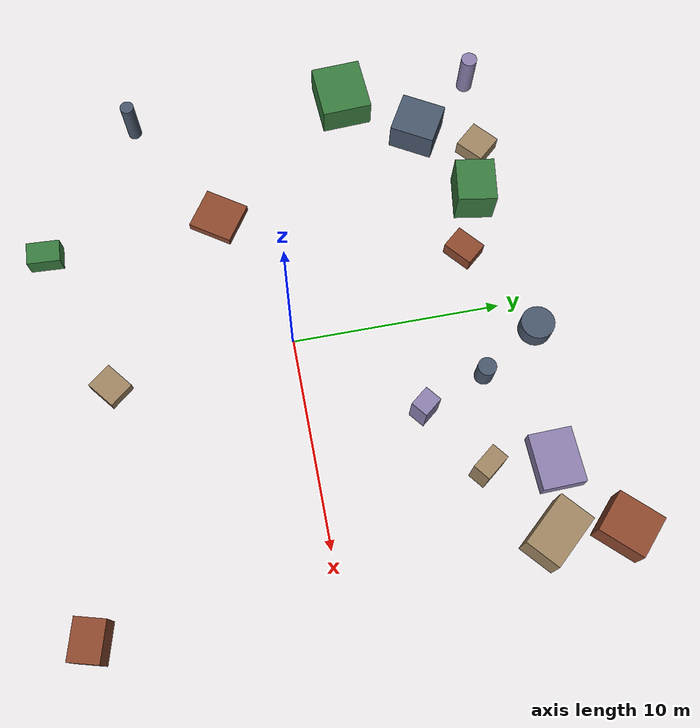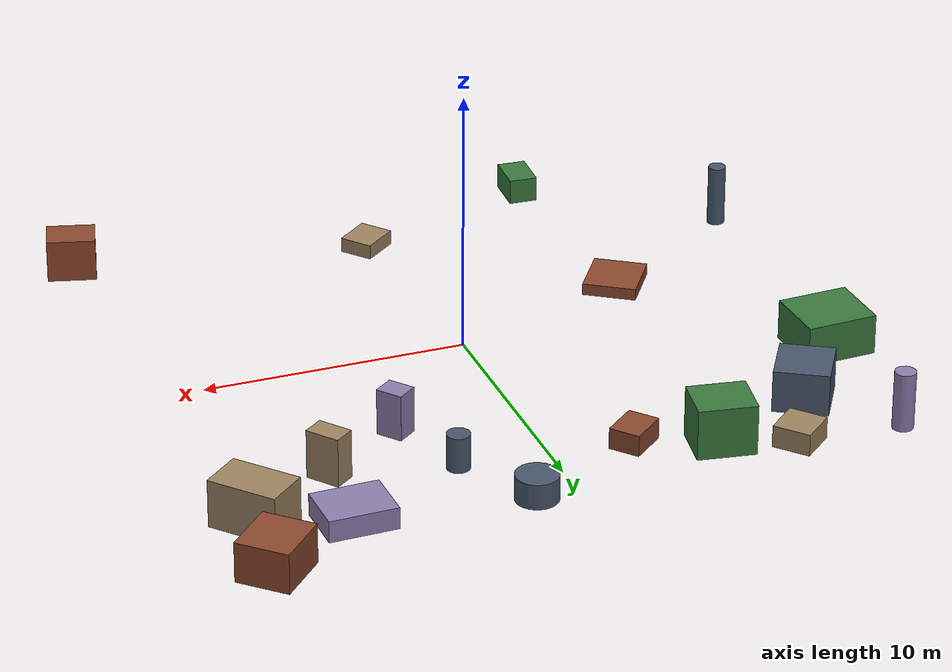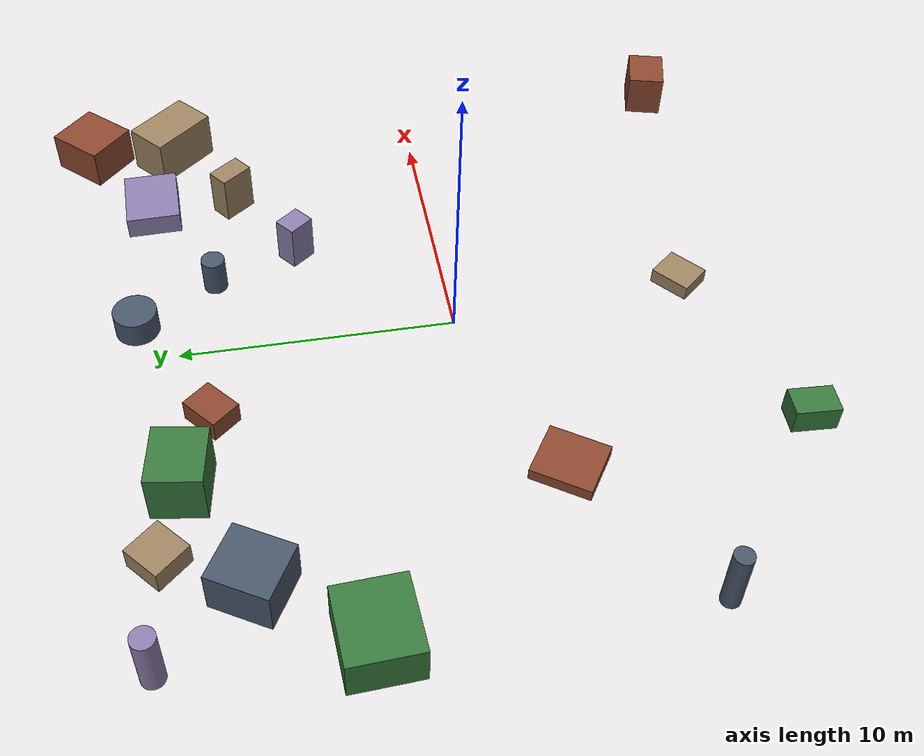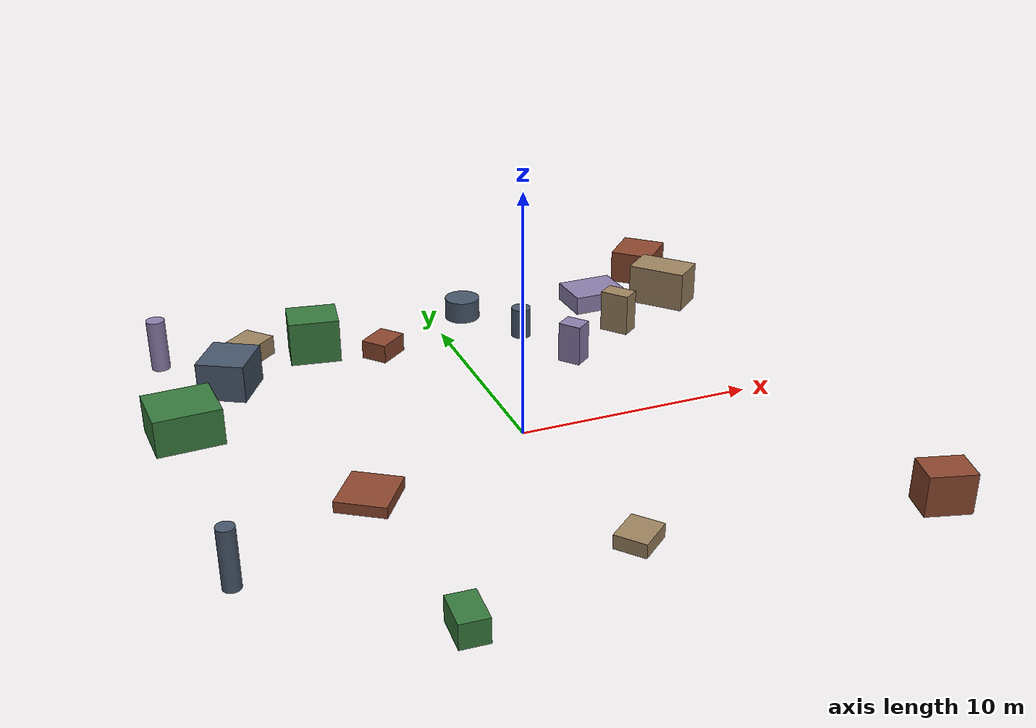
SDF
<sdf version="1.10">
 <world name="robotx_task1_uav_view">
  <gravity>0 0 -9.81</gravity>
  <physics name="physics" type="ode">
   <max_step_size>0.002</max_step_size>
   <real_time_factor>1.0</real_time_factor>
  </physics>
  <scene>
   <ambient>0.20 0.19 0.17 1.0</ambient>
   <background>0.45 0.48 0.42 1.0</background>
   <shadows>true</shadows>
   <grid>false</grid>
  </scene>
  <light name="sun" type="directional">
   <pose>0 0 300 0 0 0</pose>
   <diffuse>0.60 0.58 0.52 1.0</diffuse>
   <specular>0.30 0.35 0.28 1.0</specular>
   <direction>0.22 -0.10 -1.0</direction>
   <attenuation>
    <range>2500</range>
    <constant>0.85</constant>
    <linear>0.001</linear>
    <quadratic>0.00005</quadratic>
   </attenuation>
  </light>
  <plugin filename="gz-sim-physics-system" name="gz::sim::systems::Physics"/>
  <plugin filename="gz-sim-user-commands-system" name="gz::sim::systems::UserCommands"/>
  <plugin filename="gz-sim-scene-broadcaster-system" name="gz::sim::systems::SceneBroadcaster"/>
  <plugin filename="gz-sim-sensors-system" name="gz::sim::systems::Sensors">
   <render_engine>ogre2</render_engine>
  </plugin>
  <model name="scene_clutter_box_000">
   <static>true</static>
   <pose>7.737 7.488 0.952 0 0 -2.485155</pose>
   <link name="link">
    <visual name="v">
     <geometry><box><size>0.853 1.324 1.865</size></box></geometry>
     <material><ambient>0.45 0.38 0.32 1.0</ambient><diffuse>0.62 0.52 0.38 1.0</diffuse></material>
    </visual>
   </link>
  </model>
  <model name="scene_clutter_cyl_001">
   <static>true</static>
   <pose>-12.702 -6.065 1.236 0 0 1.398111</pose>
   <link name="link">
    <visual name="v">
     <geometry><cylinder><radius>0.333</radius><length>2.372</length></cylinder></geometry>
     <material><ambient>0.18 0.22 0.28 1.0</ambient><diffuse>0.28 0.34 0.42 1.0</diffuse></material>
    </visual>
   </link>
  </model>
  <model name="scene_clutter_box_002">
   <static>true</static>
   <pose>11.417 12.884 0.782 0 0 -0.757914</pose>
   <link name="link">
    <visual name="v">
     <geometry><box><size>2.028 2.218 1.525</size></box></geometry>
     <material><ambient>0.35 0.16 0.12 1.0</ambient><diffuse>0.55 0.28 0.18 1.0</diffuse></material>
    </visual>
   </link>
  </model>
  <model name="scene_clutter_box_003">
   <static>true</static>
   <pose>-5.929 10.082 0.985 0 0 -1.727602</pose>
   <link name="link">
    <visual name="v">
     <geometry><box><size>1.898 2.178 1.929</size></box></geometry>
     <material><ambient>0.12 0.30 0.14 1.0</ambient><diffuse>0.22 0.48 0.24 1.0</diffuse></material>
    </visual>
   </link>
  </model>
  <model name="scene_clutter_box_004">
   <static>true</static>
   <pose>4.534 5.317 0.910 0 0 0.668979</pose>
   <link name="link">
    <visual name="v">
     <geometry><box><size>0.853 1.025 1.779</size></box></geometry>
     <material><ambient>0.40 0.35 0.50 1.0</ambient><diffuse>0.55 0.50 0.68 1.0</diffuse></material>
    </visual>
   </link>
  </model>
  <model name="scene_clutter_box_005">
   <static>true</static>
   <pose>0.782 -8.692 0.303 0 0 -0.887921</pose>
   <link name="link">
    <visual name="v">
     <geometry><box><size>1.294 1.507 0.565</size></box></geometry>
     <material><ambient>0.45 0.38 0.32 1.0</ambient><diffuse>0.62 0.52 0.38 1.0</diffuse></material>
    </visual>
   </link>
  </model>
  <model name="scene_clutter_cyl_006">
   <static>true</static>
   <pose>3.315 8.468 0.731 0 0 2.605665</pose>
   <link name="link">
    <visual name="v">
     <geometry><cylinder><radius>0.435</radius><length>1.362</length></cylinder></geometry>
     <material><ambient>0.18 0.22 0.28 1.0</ambient><diffuse>0.28 0.34 0.42 1.0</diffuse></material>
    </visual>
   </link>
  </model>
  <model name="scene_clutter_box_007">
   <static>true</static>
   <pose>-3.084 8.966 0.427 0 0 2.271938</pose>
   <link name="link">
    <visual name="v">
     <geometry><box><size>1.187 1.505 0.815</size></box></geometry>
     <material><ambient>0.35 0.16 0.12 1.0</ambient><diffuse>0.55 0.28 0.18 1.0</diffuse></material>
    </visual>
   </link>
  </model>
  <model name="scene_clutter_box_008">
   <static>true</static>
   <pose>-12.495 4.661 0.793 0 0 0.054034</pose>
   <link name="link">
    <visual name="v">
     <geometry><box><size>2.709 2.454 1.546</size></box></geometry>
     <material><ambient>0.12 0.30 0.14 1.0</ambient><diffuse>0.22 0.48 0.24 1.0</diffuse></material>
    </visual>
   </link>
  </model>
  <model name="scene_clutter_box_009">
   <static>true</static>
   <pose>7.906 10.654 0.435 0 0 0.025238</pose>
   <link name="link">
    <visual name="v">
     <geometry><box><size>2.570 2.029 0.830</size></box></geometry>
     <material><ambient>0.40 0.35 0.50 1.0</ambient><diffuse>0.55 0.50 0.68 1.0</diffuse></material>
    </visual>
   </link>
  </model>
  <model name="scene_clutter_box_010">
   <static>true</static>
   <pose>11.156 9.698 0.932 0 0 2.287193</pose>
   <link name="link">
    <visual name="v">
     <geometry><box><size>2.667 1.715 1.824</size></box></geometry>
     <material><ambient>0.45 0.38 0.32 1.0</ambient><diffuse>0.62 0.52 0.38 1.0</diffuse></material>
    </visual>
   </link>
  </model>
  <model name="scene_clutter_cyl_011">
   <static>true</static>
   <pose>1.513 11.401 0.537 0 0 0.839159</pose>
   <link name="link">
    <visual name="v">
     <geometry><cylinder><radius>0.798</radius><length>0.974</length></cylinder></geometry>
     <material><ambient>0.18 0.22 0.28 1.0</ambient><diffuse>0.28 0.34 0.42 1.0</diffuse></material>
    </visual>
   </link>
  </model>
  <model name="scene_clutter_box_012">
   <static>true</static>
   <pose>11.949 -10.626 0.835 0 0 -1.834203</pose>
   <link name="link">
    <visual name="v">
     <geometry><box><size>1.411 1.840 1.631</size></box></geometry>
     <material><ambient>0.35 0.16 0.12 1.0</ambient><diffuse>0.55 0.28 0.18 1.0</diffuse></material>
    </visual>
   </link>
  </model>
  <model name="scene_clutter_box_013">
   <static>true</static>
   <pose>-6.347 -11.093 0.507 0 0 3.090025</pose>
   <link name="link">
    <visual name="v">
     <geometry><box><size>1.085 1.589 0.973</size></box></geometry>
     <material><ambient>0.12 0.30 0.14 1.0</ambient><diffuse>0.22 0.48 0.24 1.0</diffuse></material>
    </visual>
   </link>
  </model>
  <model name="scene_clutter_cyl_014">
   <static>true</static>
   <pose>-12.467 11.220 1.175 0 0 -2.289759</pose>
   <link name="link">
    <visual name="v">
     <geometry><cylinder><radius>0.394</radius><length>2.250</length></cylinder></geometry>
     <material><ambient>0.40 0.35 0.50 1.0</ambient><diffuse>0.55 0.50 0.68 1.0</diffuse></material>
    </visual>
   </link>
  </model>
  <model name="scene_clutter_box_015">
   <static>true</static>
   <pose>-8.591 10.919 0.441 0 0 -0.849115</pose>
   <link name="link">
    <visual name="v">
     <geometry><box><size>1.443 1.466 0.842</size></box></geometry>
     <material><ambient>0.45 0.38 0.32 1.0</ambient><diffuse>0.62 0.52 0.38 1.0</diffuse></material>
    </visual>
   </link>
  </model>
  <model name="scene_clutter_box_016">
   <static>true</static>
   <pose>-10.018 8.103 0.824 0 0 1.042002</pose>
   <link name="link">
    <visual name="v">
     <geometry><box><size>2.197 2.054 1.609</size></box></geometry>
     <material><ambient>0.18 0.22 0.28 1.0</ambient><diffuse>0.28 0.34 0.42 1.0</diffuse></material>
    </visual>
   </link>
  </model>
  <model name="scene_clutter_box_017">
   <static>true</static>
   <pose>-7.033 -2.527 0.245 0 0 0.980457</pose>
   <link name="link">
    <visual name="v">
     <geometry><box><size>2.185 2.034 0.450</size></box></geometry>
     <material><ambient>0.35 0.16 0.12 1.0</ambient><diffuse>0.55 0.28 0.18 1.0</diffuse></material>
    </visual>
   </link>
  </model>
  <model name="uav_dataset_camera">
   <static>false</static>
   <pose>0 0 26 0 0 0</pose>
   <plugin filename="librobotx_overhead_motion_plugin.dylib" name="robotx::OverheadMotionPlugin">
    <radius_x_m>9.83400</radius_x_m>
    <radius_y_m>9.88788</radius_y_m>
    <angular_speed_rad_s>0.036064</angular_speed_rad_s>
    <phase_rad>5.446602</phase_rad>
    <z_wobble_m>0.03158</z_wobble_m>
    <z_wobble_hz>0.07237</z_wobble_hz>
    <z_wobble_phase_rad>4.970319</z_wobble_phase_rad>
   </plugin>
   <link name="camera_link">
    <gravity>false</gravity>
    <sensor name="top_down_rgb" type="camera">
     <always_on>true</always_on>
     <update_rate>20</update_rate>
     <pose>0 0 0 0 1.57079632679 0</pose>
     <camera>
      <horizontal_fov>1.05</horizontal_fov>
      <image><width>1920</width><height>1080</height><format>R8G8B8</format></image>
      <clip><near>0.2</near><far>600</far></clip>
     </camera>
     <topic>/robotx/uav/camera/image_raw</topic>
     <visualize>true</visualize>
    </sensor>
   </link>
  </model>
 </world>
</sdf>
